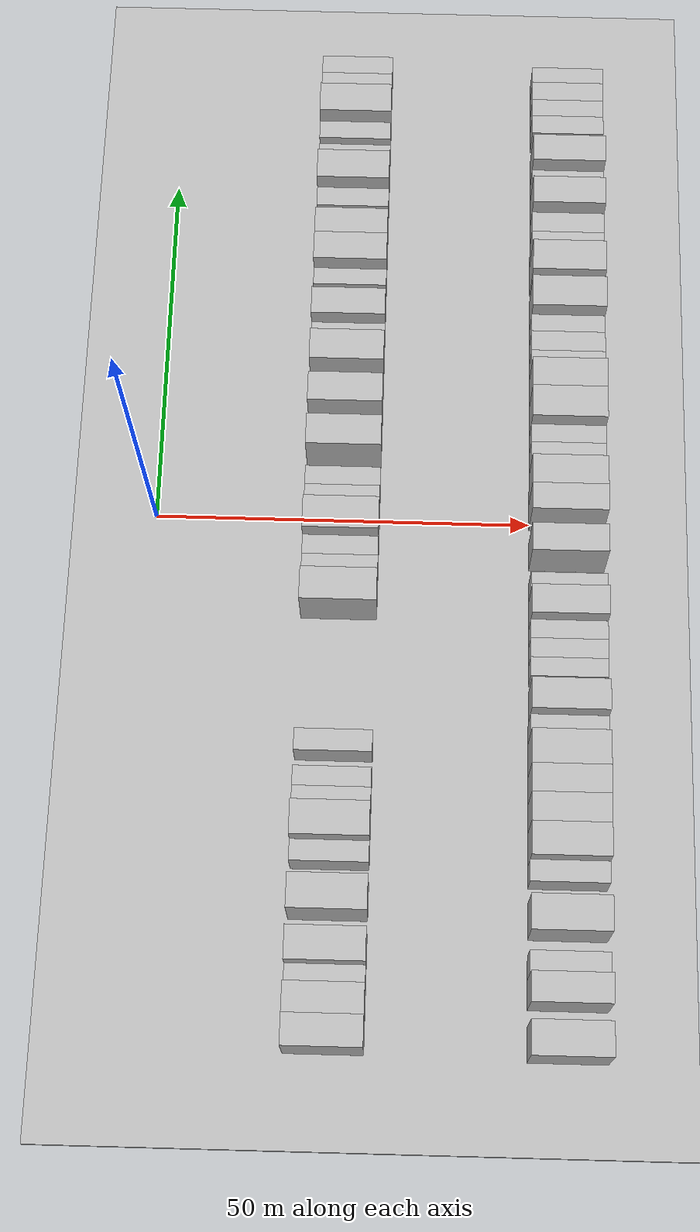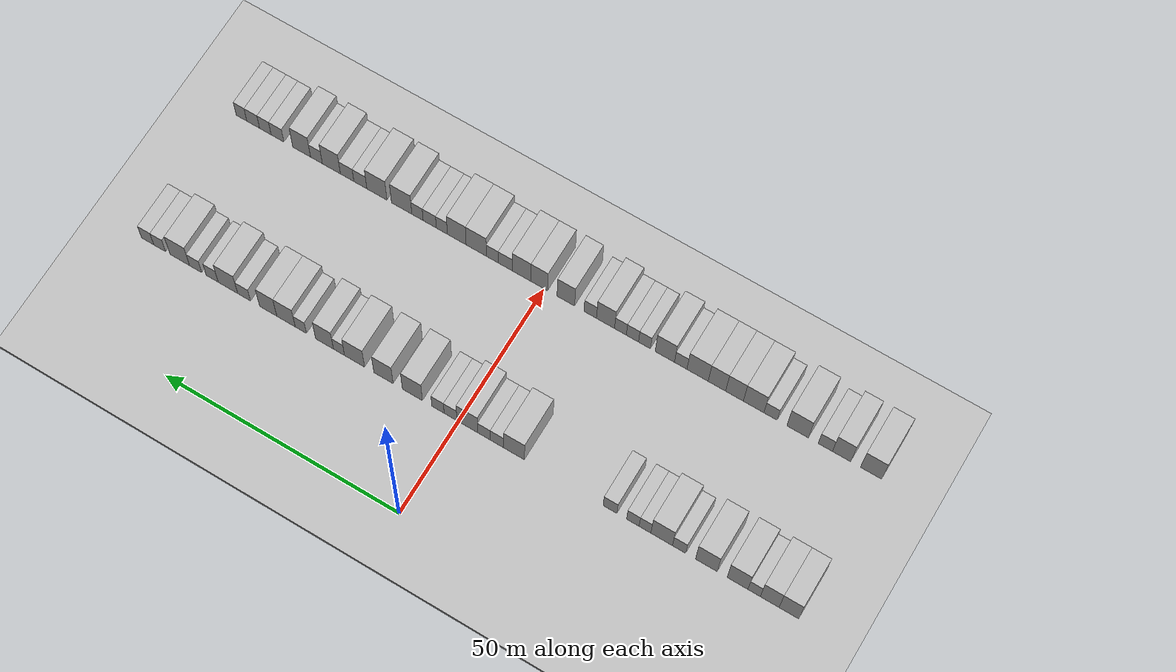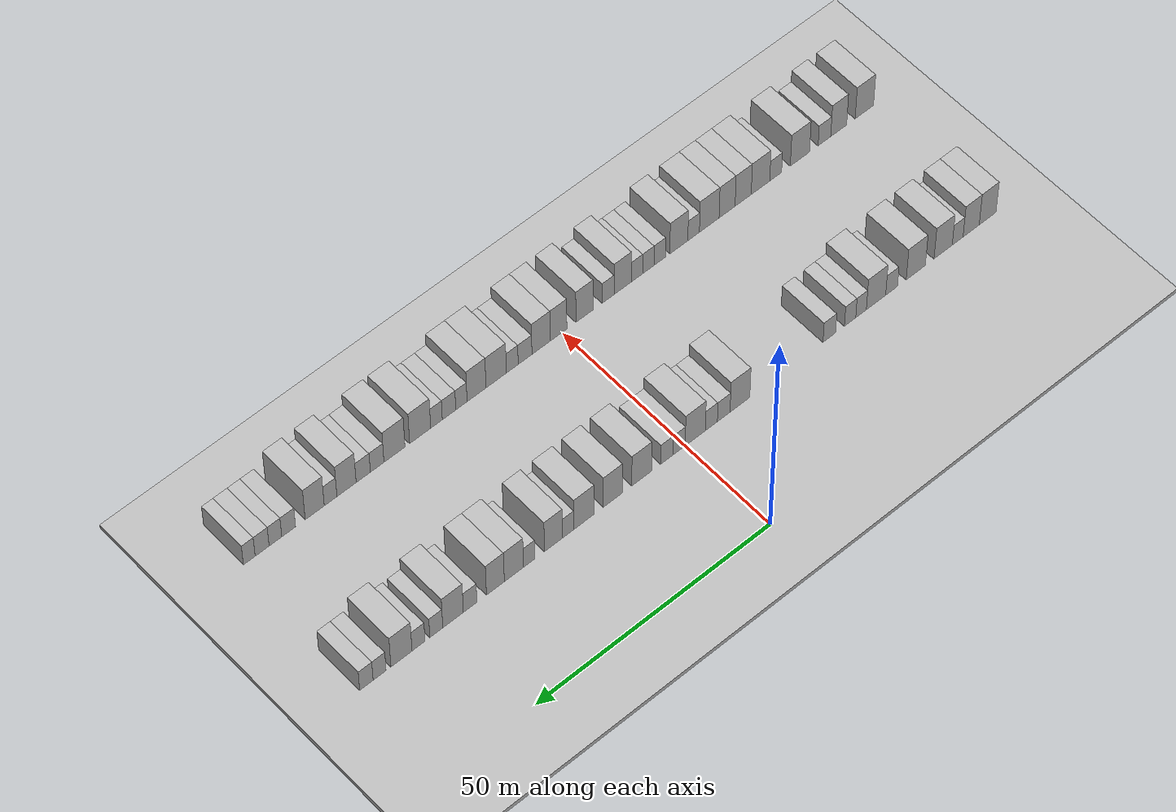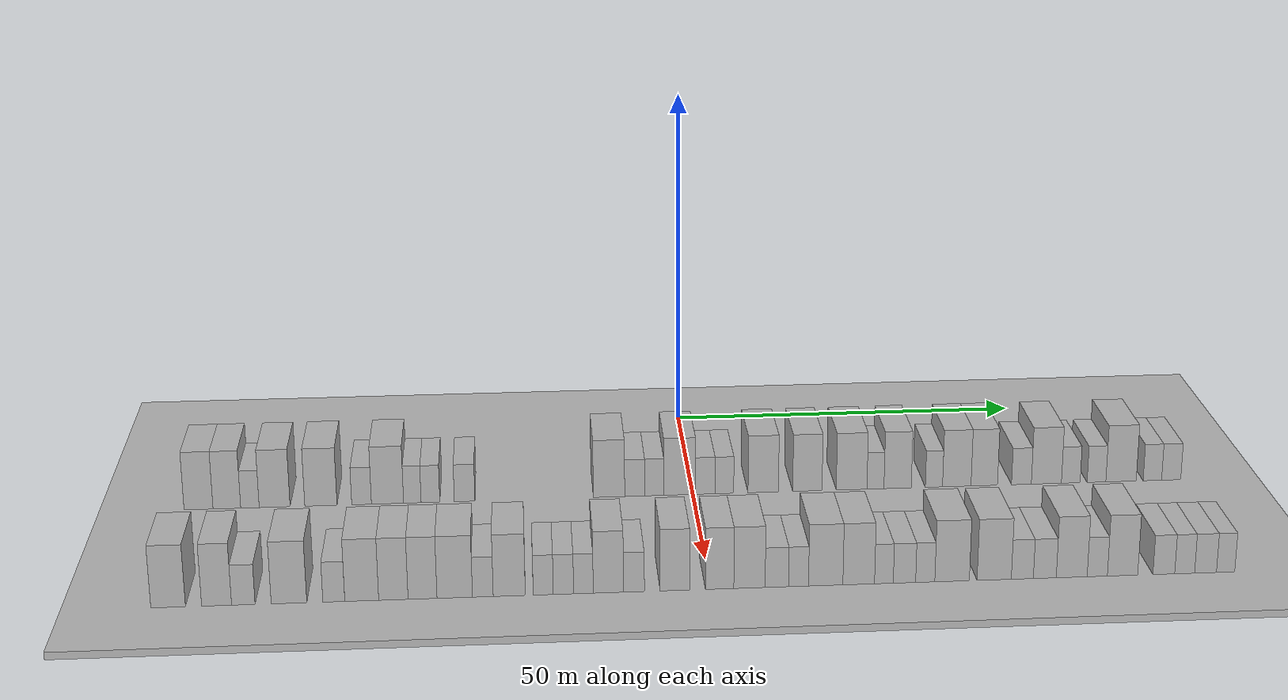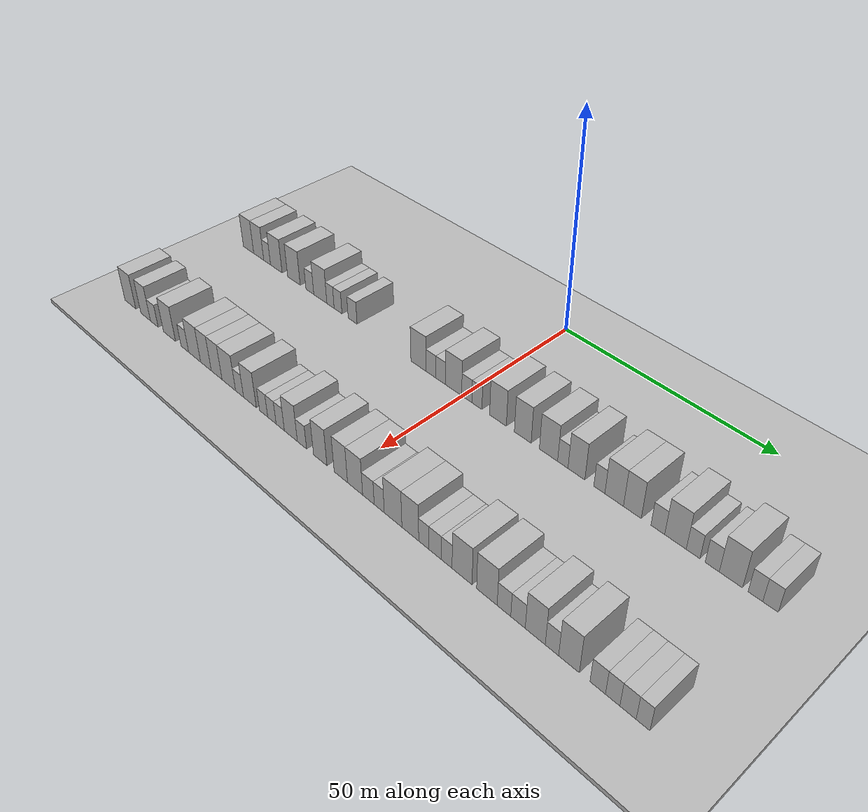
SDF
<sdf version="1.6">
 <world name="default">
  <include><name>ground_plane_1</name><uri>model://HANNAS_ground_plane</uri></include>
  <include>
   <name>ground_plane_2</name>
   <uri>model://HANNAS_ground_plane</uri>
   <pose>100 0 0  0 0 0</pose>
  </include>
  <model name="building_38">
   <static>1</static>
   <pose>25.0000 -68.0670 0 0.000000 0.000000 0.000000</pose>
   <link name="link">
    <pose>0 0 4.50 0 0 0</pose>
    <collision name="collision"><geometry><box><size>10.0000 3.9202 9.0000</size></box></geometry></collision>
    <visual name="visual">
     <cast_shadows>0</cast_shadows>
     <geometry><box><size>10.0000 3.9202 9.0000</size></box></geometry>
     <material>
      <script>
       <uri>model://HANNAS_wall/materials/scripts</uri>
       <uri>model://HANNAS_wall/materials/textures</uri>
       <name>vrc/HANNAS_wall</name>
      </script>
     </material>
    </visual>
   </link>
  </model>
  <model name="building_39">
   <static>1</static>
   <pose>25.0000 -64.2276 0 0.000000 0.000000 0.000000</pose>
   <link name="link">
    <pose>0 0 4.50 0 0 0</pose>
    <collision name="collision"><geometry><box><size>10.0000 3.7588 9.0000</size></box></geometry></collision>
    <visual name="visual">
     <cast_shadows>0</cast_shadows>
     <geometry><box><size>10.0000 3.7588 9.0000</size></box></geometry>
     <material>
      <script>
       <uri>model://HANNAS_wall/materials/scripts</uri>
       <uri>model://HANNAS_wall/materials/textures</uri>
       <name>vrc/HANNAS_wall</name>
      </script>
     </material>
    </visual>
   </link>
  </model>
  <model name="building_40">
   <static>1</static>
   <pose>25.0000 -61.0948 0 0.000000 0.000000 0.000000</pose>
   <link name="link">
    <pose>0 0 3.00 0 0 0</pose>
    <collision name="collision"><geometry><box><size>10.0000 2.5068 6.0000</size></box></geometry></collision>
    <visual name="visual">
     <cast_shadows>0</cast_shadows>
     <geometry><box><size>10.0000 2.5068 6.0000</size></box></geometry>
     <material>
      <script>
       <uri>model://HANNAS_wall/materials/scripts</uri>
       <uri>model://HANNAS_wall/materials/textures</uri>
       <name>vrc/HANNAS_wall</name>
      </script>
     </material>
    </visual>
   </link>
  </model>
  <model name="building_41">
   <static>1</static>
   <pose>25.0000 -57.7386 0 0.000000 0.000000 0.000000</pose>
   <link name="link">
    <pose>0 0 4.50 0 0 0</pose>
    <collision name="collision"><geometry><box><size>10.0000 4.2054 9.0000</size></box></geometry></collision>
    <visual name="visual">
     <cast_shadows>0</cast_shadows>
     <geometry><box><size>10.0000 4.2054 9.0000</size></box></geometry>
     <material>
      <script>
       <uri>model://HANNAS_wall/materials/scripts</uri>
       <uri>model://HANNAS_wall/materials/textures</uri>
       <name>vrc/HANNAS_wall</name>
      </script>
     </material>
    </visual>
   </link>
  </model>
  <model name="building_42">
   <static>1</static>
   <pose>25.0000 -51.4354 0 0.000000 0.000000 0.000000</pose>
   <link name="link">
    <pose>0 0 4.50 0 0 0</pose>
    <collision name="collision"><geometry><box><size>10.0000 4.4011 9.0000</size></box></geometry></collision>
    <visual name="visual">
     <cast_shadows>0</cast_shadows>
     <geometry><box><size>10.0000 4.4011 9.0000</size></box></geometry>
     <material>
      <script>
       <uri>model://HANNAS_wall/materials/scripts</uri>
       <uri>model://HANNAS_wall/materials/textures</uri>
       <name>vrc/HANNAS_wall</name>
      </script>
     </material>
    </visual>
   </link>
  </model>
  <model name="building_43">
   <static>1</static>
   <pose>25.0000 -45.8869 0 0.000000 0.000000 0.000000</pose>
   <link name="link">
    <pose>0 0 3.00 0 0 0</pose>
    <collision name="collision"><geometry><box><size>10.0000 2.6959 6.0000</size></box></geometry></collision>
    <visual name="visual">
     <cast_shadows>0</cast_shadows>
     <geometry><box><size>10.0000 2.6959 6.0000</size></box></geometry>
     <material>
      <script>
       <uri>model://HANNAS_wall/materials/scripts</uri>
       <uri>model://HANNAS_wall/materials/textures</uri>
       <name>vrc/HANNAS_wall</name>
      </script>
     </material>
    </visual>
   </link>
  </model>
  <model name="building_44">
   <static>1</static>
   <pose>25.0000 -42.3355 0 0.000000 0.000000 0.000000</pose>
   <link name="link">
    <pose>0 0 4.50 0 0 0</pose>
    <collision name="collision"><geometry><box><size>10.0000 4.4068 9.0000</size></box></geometry></collision>
    <visual name="visual">
     <cast_shadows>0</cast_shadows>
     <geometry><box><size>10.0000 4.4068 9.0000</size></box></geometry>
     <material>
      <script>
       <uri>model://HANNAS_wall/materials/scripts</uri>
       <uri>model://HANNAS_wall/materials/textures</uri>
       <name>vrc/HANNAS_wall</name>
      </script>
     </material>
    </visual>
   </link>
  </model>
  <model name="building_45">
   <static>1</static>
   <pose>25.0000 -38.9299 0 0.000000 0.000000 0.000000</pose>
   <link name="link">
    <pose>0 0 3.00 0 0 0</pose>
    <collision name="collision"><geometry><box><size>10.0000 2.4043 6.0000</size></box></geometry></collision>
    <visual name="visual">
     <cast_shadows>0</cast_shadows>
     <geometry><box><size>10.0000 2.4043 6.0000</size></box></geometry>
     <material>
      <script>
       <uri>model://HANNAS_wall/materials/scripts</uri>
       <uri>model://HANNAS_wall/materials/textures</uri>
       <name>vrc/HANNAS_wall</name>
      </script>
     </material>
    </visual>
   </link>
  </model>
  <model name="building_46">
   <static>1</static>
   <pose>25.0000 -36.4468 0 0.000000 0.000000 0.000000</pose>
   <link name="link">
    <pose>0 0 3.00 0 0 0</pose>
    <collision name="collision"><geometry><box><size>10.0000 2.5620 6.0000</size></box></geometry></collision>
    <visual name="visual">
     <cast_shadows>0</cast_shadows>
     <geometry><box><size>10.0000 2.5620 6.0000</size></box></geometry>
     <material>
      <script>
       <uri>model://HANNAS_wall/materials/scripts</uri>
       <uri>model://HANNAS_wall/materials/textures</uri>
       <name>vrc/HANNAS_wall</name>
      </script>
     </material>
    </visual>
   </link>
  </model>
  <model name="building_47">
   <static>1</static>
   <pose>25.0000 -31.7470 0 0.000000 0.000000 0.000000</pose>
   <link name="link">
    <pose>0 0 3.00 0 0 0</pose>
    <collision name="collision"><geometry><box><size>10.0000 2.8375 6.0000</size></box></geometry></collision>
    <visual name="visual">
     <cast_shadows>0</cast_shadows>
     <geometry><box><size>10.0000 2.8375 6.0000</size></box></geometry>
     <material>
      <script>
       <uri>model://HANNAS_wall/materials/scripts</uri>
       <uri>model://HANNAS_wall/materials/textures</uri>
       <name>vrc/HANNAS_wall</name>
      </script>
     </material>
    </visual>
   </link>
  </model>
  <model name="building_48">
   <static>1</static>
   <pose>25.0000 -11.7976 0 0.000000 0.000000 0.000000</pose>
   <link name="link">
    <pose>0 0 4.50 0 0 0</pose>
    <collision name="collision"><geometry><box><size>10.0000 4.3538 9.0000</size></box></geometry></collision>
    <visual name="visual">
     <cast_shadows>0</cast_shadows>
     <geometry><box><size>10.0000 4.3538 9.0000</size></box></geometry>
     <material>
      <script>
       <uri>model://HANNAS_wall/materials/scripts</uri>
       <uri>model://HANNAS_wall/materials/textures</uri>
       <name>vrc/HANNAS_wall</name>
      </script>
     </material>
    </visual>
   </link>
  </model>
  <model name="building_49">
   <static>1</static>
   <pose>25.0000 -8.2240 0 0.000000 0.000000 0.000000</pose>
   <link name="link">
    <pose>0 0 3.00 0 0 0</pose>
    <collision name="collision"><geometry><box><size>10.0000 2.7933 6.0000</size></box></geometry></collision>
    <visual name="visual">
     <cast_shadows>0</cast_shadows>
     <geometry><box><size>10.0000 2.7933 6.0000</size></box></geometry>
     <material>
      <script>
       <uri>model://HANNAS_wall/materials/scripts</uri>
       <uri>model://HANNAS_wall/materials/textures</uri>
       <name>vrc/HANNAS_wall</name>
      </script>
     </material>
    </visual>
   </link>
  </model>
  <model name="building_50">
   <static>1</static>
   <pose>25.0000 -5.5053 0 0.000000 0.000000 0.000000</pose>
   <link name="link">
    <pose>0 0 3.00 0 0 0</pose>
    <collision name="collision"><geometry><box><size>10.0000 2.6441 6.0000</size></box></geometry></collision>
    <visual name="visual">
     <cast_shadows>0</cast_shadows>
     <geometry><box><size>10.0000 2.6441 6.0000</size></box></geometry>
     <material>
      <script>
       <uri>model://HANNAS_wall/materials/scripts</uri>
       <uri>model://HANNAS_wall/materials/textures</uri>
       <name>vrc/HANNAS_wall</name>
      </script>
     </material>
    </visual>
   </link>
  </model>
  <model name="building_51">
   <static>1</static>
   <pose>25.0000 -1.9805 0 0.000000 0.000000 0.000000</pose>
   <link name="link">
    <pose>0 0 4.50 0 0 0</pose>
    <collision name="collision"><geometry><box><size>10.0000 4.4055 9.0000</size></box></geometry></collision>
    <visual name="visual">
     <cast_shadows>0</cast_shadows>
     <geometry><box><size>10.0000 4.4055 9.0000</size></box></geometry>
     <material>
      <script>
       <uri>model://HANNAS_wall/materials/scripts</uri>
       <uri>model://HANNAS_wall/materials/textures</uri>
       <name>vrc/HANNAS_wall</name>
      </script>
     </material>
    </visual>
   </link>
  </model>
  <model name="building_52">
   <static>1</static>
   <pose>25.0000 1.5876 0 0.000000 0.000000 0.000000</pose>
   <link name="link">
    <pose>0 0 3.00 0 0 0</pose>
    <collision name="collision"><geometry><box><size>10.0000 2.7308 6.0000</size></box></geometry></collision>
    <visual name="visual">
     <cast_shadows>0</cast_shadows>
     <geometry><box><size>10.0000 2.7308 6.0000</size></box></geometry>
     <material>
      <script>
       <uri>model://HANNAS_wall/materials/scripts</uri>
       <uri>model://HANNAS_wall/materials/textures</uri>
       <name>vrc/HANNAS_wall</name>
      </script>
     </material>
    </visual>
   </link>
  </model>
  <model name="building_53">
   <static>1</static>
   <pose>25.0000 4.2587 0 0.000000 0.000000 0.000000</pose>
   <link name="link">
    <pose>0 0 3.00 0 0 0</pose>
    <collision name="collision"><geometry><box><size>10.0000 2.6114 6.0000</size></box></geometry></collision>
    <visual name="visual">
     <cast_shadows>0</cast_shadows>
     <geometry><box><size>10.0000 2.6114 6.0000</size></box></geometry>
     <material>
      <script>
       <uri>model://HANNAS_wall/materials/scripts</uri>
       <uri>model://HANNAS_wall/materials/textures</uri>
       <name>vrc/HANNAS_wall</name>
      </script>
     </material>
    </visual>
   </link>
  </model>
  <model name="building_54">
   <static>1</static>
   <pose>25.0000 9.6952 0 0.000000 0.000000 0.000000</pose>
   <link name="link">
    <pose>0 0 4.50 0 0 0</pose>
    <collision name="collision"><geometry><box><size>10.0000 4.2614 9.0000</size></box></geometry></collision>
    <visual name="visual">
     <cast_shadows>0</cast_shadows>
     <geometry><box><size>10.0000 4.2614 9.0000</size></box></geometry>
     <material>
      <script>
       <uri>model://HANNAS_wall/materials/scripts</uri>
       <uri>model://HANNAS_wall/materials/textures</uri>
       <name>vrc/HANNAS_wall</name>
      </script>
     </material>
    </visual>
   </link>
  </model>
  <model name="building_55">
   <static>1</static>
   <pose>25.0000 15.8820 0 0.000000 0.000000 0.000000</pose>
   <link name="link">
    <pose>0 0 4.50 0 0 0</pose>
    <collision name="collision"><geometry><box><size>10.0000 4.1123 9.0000</size></box></geometry></collision>
    <visual name="visual">
     <cast_shadows>0</cast_shadows>
     <geometry><box><size>10.0000 4.1123 9.0000</size></box></geometry>
     <material>
      <script>
       <uri>model://HANNAS_wall/materials/scripts</uri>
       <uri>model://HANNAS_wall/materials/textures</uri>
       <name>vrc/HANNAS_wall</name>
      </script>
     </material>
    </visual>
   </link>
  </model>
  <model name="building_56">
   <static>1</static>
   <pose>25.0000 22.0981 0 0.000000 0.000000 0.000000</pose>
   <link name="link">
    <pose>0 0 4.50 0 0 0</pose>
    <collision name="collision"><geometry><box><size>10.0000 4.3200 9.0000</size></box></geometry></collision>
    <visual name="visual">
     <cast_shadows>0</cast_shadows>
     <geometry><box><size>10.0000 4.3200 9.0000</size></box></geometry>
     <material>
      <script>
       <uri>model://HANNAS_wall/materials/scripts</uri>
       <uri>model://HANNAS_wall/materials/textures</uri>
       <name>vrc/HANNAS_wall</name>
      </script>
     </material>
    </visual>
   </link>
  </model>
  <model name="building_57">
   <static>1</static>
   <pose>25.0000 25.4581 0 0.000000 0.000000 0.000000</pose>
   <link name="link">
    <pose>0 0 3.00 0 0 0</pose>
    <collision name="collision"><geometry><box><size>10.0000 2.4001 6.0000</size></box></geometry></collision>
    <visual name="visual">
     <cast_shadows>0</cast_shadows>
     <geometry><box><size>10.0000 2.4001 6.0000</size></box></geometry>
     <material>
      <script>
       <uri>model://HANNAS_wall/materials/scripts</uri>
       <uri>model://HANNAS_wall/materials/textures</uri>
       <name>vrc/HANNAS_wall</name>
      </script>
     </material>
    </visual>
   </link>
  </model>
  <model name="building_58">
   <static>1</static>
   <pose>25.0000 28.5833 0 0.000000 0.000000 0.000000</pose>
   <link name="link">
    <pose>0 0 4.50 0 0 0</pose>
    <collision name="collision"><geometry><box><size>10.0000 3.8502 9.0000</size></box></geometry></collision>
    <visual name="visual">
     <cast_shadows>0</cast_shadows>
     <geometry><box><size>10.0000 3.8502 9.0000</size></box></geometry>
     <material>
      <script>
       <uri>model://HANNAS_wall/materials/scripts</uri>
       <uri>model://HANNAS_wall/materials/textures</uri>
       <name>vrc/HANNAS_wall</name>
      </script>
     </material>
    </visual>
   </link>
  </model>
  <model name="building_59">
   <static>1</static>
   <pose>25.0000 33.7234 0 0.000000 0.000000 0.000000</pose>
   <link name="link">
    <pose>0 0 3.00 0 0 0</pose>
    <collision name="collision"><geometry><box><size>10.0000 2.4300 6.0000</size></box></geometry></collision>
    <visual name="visual">
     <cast_shadows>0</cast_shadows>
     <geometry><box><size>10.0000 2.4300 6.0000</size></box></geometry>
     <material>
      <script>
       <uri>model://HANNAS_wall/materials/scripts</uri>
       <uri>model://HANNAS_wall/materials/textures</uri>
       <name>vrc/HANNAS_wall</name>
      </script>
     </material>
    </visual>
   </link>
  </model>
  <model name="building_60">
   <static>1</static>
   <pose>25.0000 36.9550 0 0.000000 0.000000 0.000000</pose>
   <link name="link">
    <pose>0 0 4.50 0 0 0</pose>
    <collision name="collision"><geometry><box><size>10.0000 4.0330 9.0000</size></box></geometry></collision>
    <visual name="visual">
     <cast_shadows>0</cast_shadows>
     <geometry><box><size>10.0000 4.0330 9.0000</size></box></geometry>
     <material>
      <script>
       <uri>model://HANNAS_wall/materials/scripts</uri>
       <uri>model://HANNAS_wall/materials/textures</uri>
       <name>vrc/HANNAS_wall</name>
      </script>
     </material>
    </visual>
   </link>
  </model>
  <model name="building_61">
   <static>1</static>
   <pose>25.0000 40.8495 0 0.000000 0.000000 0.000000</pose>
   <link name="link">
    <pose>0 0 4.50 0 0 0</pose>
    <collision name="collision"><geometry><box><size>10.0000 3.7560 9.0000</size></box></geometry></collision>
    <visual name="visual">
     <cast_shadows>0</cast_shadows>
     <geometry><box><size>10.0000 3.7560 9.0000</size></box></geometry>
     <material>
      <script>
       <uri>model://HANNAS_wall/materials/scripts</uri>
       <uri>model://HANNAS_wall/materials/textures</uri>
       <name>vrc/HANNAS_wall</name>
      </script>
     </material>
    </visual>
   </link>
  </model>
  <model name="building_62">
   <static>1</static>
   <pose>25.0000 46.1353 0 0.000000 0.000000 0.000000</pose>
   <link name="link">
    <pose>0 0 3.00 0 0 0</pose>
    <collision name="collision"><geometry><box><size>10.0000 2.8158 6.0000</size></box></geometry></collision>
    <visual name="visual">
     <cast_shadows>0</cast_shadows>
     <geometry><box><size>10.0000 2.8158 6.0000</size></box></geometry>
     <material>
      <script>
       <uri>model://HANNAS_wall/materials/scripts</uri>
       <uri>model://HANNAS_wall/materials/textures</uri>
       <name>vrc/HANNAS_wall</name>
      </script>
     </material>
    </visual>
   </link>
  </model>
  <model name="building_63">
   <static>1</static>
   <pose>25.0000 49.6859 0 0.000000 0.000000 0.000000</pose>
   <link name="link">
    <pose>0 0 4.50 0 0 0</pose>
    <collision name="collision"><geometry><box><size>10.0000 4.2855 9.0000</size></box></geometry></collision>
    <visual name="visual">
     <cast_shadows>0</cast_shadows>
     <geometry><box><size>10.0000 4.2855 9.0000</size></box></geometry>
     <material>
      <script>
       <uri>model://HANNAS_wall/materials/scripts</uri>
       <uri>model://HANNAS_wall/materials/textures</uri>
       <name>vrc/HANNAS_wall</name>
      </script>
     </material>
    </visual>
   </link>
  </model>
  <model name="building_64">
   <static>1</static>
   <pose>25.0000 53.1660 0 0.000000 0.000000 0.000000</pose>
   <link name="link">
    <pose>0 0 3.00 0 0 0</pose>
    <collision name="collision"><geometry><box><size>10.0000 2.6747 6.0000</size></box></geometry></collision>
    <visual name="visual">
     <cast_shadows>0</cast_shadows>
     <geometry><box><size>10.0000 2.6747 6.0000</size></box></geometry>
     <material>
      <script>
       <uri>model://HANNAS_wall/materials/scripts</uri>
       <uri>model://HANNAS_wall/materials/textures</uri>
       <name>vrc/HANNAS_wall</name>
      </script>
     </material>
    </visual>
   </link>
  </model>
  <model name="building_65">
   <static>1</static>
   <pose>25.0000 56.8422 0 0.000000 0.000000 0.000000</pose>
   <link name="link">
    <pose>0 0 3.00 0 0 0</pose>
    <collision name="collision"><geometry><box><size>10.0000 2.6775 6.0000</size></box></geometry></collision>
    <visual name="visual">
     <cast_shadows>0</cast_shadows>
     <geometry><box><size>10.0000 2.6775 6.0000</size></box></geometry>
     <material>
      <script>
       <uri>model://HANNAS_wall/materials/scripts</uri>
       <uri>model://HANNAS_wall/materials/textures</uri>
       <name>vrc/HANNAS_wall</name>
      </script>
     </material>
    </visual>
   </link>
  </model>
  <model name="building_66">
   <static>1</static>
   <pose>25.0000 60.3507 0 0.000000 0.000000 0.000000</pose>
   <link name="link">
    <pose>0 0 4.50 0 0 0</pose>
    <collision name="collision"><geometry><box><size>10.0000 4.3394 9.0000</size></box></geometry></collision>
    <visual name="visual">
     <cast_shadows>0</cast_shadows>
     <geometry><box><size>10.0000 4.3394 9.0000</size></box></geometry>
     <material>
      <script>
       <uri>model://HANNAS_wall/materials/scripts</uri>
       <uri>model://HANNAS_wall/materials/textures</uri>
       <name>vrc/HANNAS_wall</name>
      </script>
     </material>
    </visual>
   </link>
  </model>
  <model name="building_67">
   <static>1</static>
   <pose>25.0000 64.8433 0 0.000000 0.000000 0.000000</pose>
   <link name="link">
    <pose>0 0 3.00 0 0 0</pose>
    <collision name="collision"><geometry><box><size>10.0000 2.6458 6.0000</size></box></geometry></collision>
    <visual name="visual">
     <cast_shadows>0</cast_shadows>
     <geometry><box><size>10.0000 2.6458 6.0000</size></box></geometry>
     <material>
      <script>
       <uri>model://HANNAS_wall/materials/scripts</uri>
       <uri>model://HANNAS_wall/materials/textures</uri>
       <name>vrc/HANNAS_wall</name>
      </script>
     </material>
    </visual>
   </link>
  </model>
  <model name="building_68">
   <static>1</static>
   <pose>25.0000 67.5392 0 0.000000 0.000000 0.000000</pose>
   <link name="link">
    <pose>0 0 3.00 0 0 0</pose>
    <collision name="collision"><geometry><box><size>10.0000 2.7460 6.0000</size></box></geometry></collision>
    <visual name="visual">
     <cast_shadows>0</cast_shadows>
     <geometry><box><size>10.0000 2.7460 6.0000</size></box></geometry>
     <material>
      <script>
       <uri>model://HANNAS_wall/materials/scripts</uri>
       <uri>model://HANNAS_wall/materials/textures</uri>
       <name>vrc/HANNAS_wall</name>
      </script>
     </material>
    </visual>
   </link>
  </model>
  <model name="building_134">
   <static>1</static>
   <pose>55.0000 -68.2316 0 0.000000 0.000000 0.000000</pose>
   <link name="link">
    <pose>0 0 4.50 0 0 0</pose>
    <collision name="collision"><geometry><box><size>10.0000 4.2879 9.0000</size></box></geometry></collision>
    <visual name="visual">
     <cast_shadows>0</cast_shadows>
     <geometry><box><size>10.0000 4.2879 9.0000</size></box></geometry>
     <material>
      <script>
       <uri>model://HANNAS_wall/materials/scripts</uri>
       <uri>model://HANNAS_wall/materials/textures</uri>
       <name>vrc/HANNAS_wall</name>
      </script>
     </material>
    </visual>
   </link>
  </model>
  <model name="building_135">
   <static>1</static>
   <pose>55.0000 -62.2344 0 0.000000 0.000000 0.000000</pose>
   <link name="link">
    <pose>0 0 4.50 0 0 0</pose>
    <collision name="collision"><geometry><box><size>10.0000 3.7065 9.0000</size></box></geometry></collision>
    <visual name="visual">
     <cast_shadows>0</cast_shadows>
     <geometry><box><size>10.0000 3.7065 9.0000</size></box></geometry>
     <material>
      <script>
       <uri>model://HANNAS_wall/materials/scripts</uri>
       <uri>model://HANNAS_wall/materials/textures</uri>
       <name>vrc/HANNAS_wall</name>
      </script>
     </material>
    </visual>
   </link>
  </model>
  <model name="building_136">
   <static>1</static>
   <pose>55.0000 -58.9238 0 0.000000 0.000000 0.000000</pose>
   <link name="link">
    <pose>0 0 3.00 0 0 0</pose>
    <collision name="collision"><geometry><box><size>10.0000 2.9149 6.0000</size></box></geometry></collision>
    <visual name="visual">
     <cast_shadows>0</cast_shadows>
     <geometry><box><size>10.0000 2.9149 6.0000</size></box></geometry>
     <material>
      <script>
       <uri>model://HANNAS_wall/materials/scripts</uri>
       <uri>model://HANNAS_wall/materials/textures</uri>
       <name>vrc/HANNAS_wall</name>
      </script>
     </material>
    </visual>
   </link>
  </model>
  <model name="building_137">
   <static>1</static>
   <pose>55.0000 -53.2517 0 0.000000 0.000000 0.000000</pose>
   <link name="link">
    <pose>0 0 4.50 0 0 0</pose>
    <collision name="collision"><geometry><box><size>10.0000 4.4294 9.0000</size></box></geometry></collision>
    <visual name="visual">
     <cast_shadows>0</cast_shadows>
     <geometry><box><size>10.0000 4.4294 9.0000</size></box></geometry>
     <material>
      <script>
       <uri>model://HANNAS_wall/materials/scripts</uri>
       <uri>model://HANNAS_wall/materials/textures</uri>
       <name>vrc/HANNAS_wall</name>
      </script>
     </material>
    </visual>
   </link>
  </model>
  <model name="building_138">
   <static>1</static>
   <pose>55.0000 -47.6701 0 0.000000 0.000000 0.000000</pose>
   <link name="link">
    <pose>0 0 3.00 0 0 0</pose>
    <collision name="collision"><geometry><box><size>10.0000 2.7338 6.0000</size></box></geometry></collision>
    <visual name="visual">
     <cast_shadows>0</cast_shadows>
     <geometry><box><size>10.0000 2.7338 6.0000</size></box></geometry>
     <material>
      <script>
       <uri>model://HANNAS_wall/materials/scripts</uri>
       <uri>model://HANNAS_wall/materials/textures</uri>
       <name>vrc/HANNAS_wall</name>
      </script>
     </material>
    </visual>
   </link>
  </model>
  <model name="building_139">
   <static>1</static>
   <pose>55.0000 -44.1873 0 0.000000 0.000000 0.000000</pose>
   <link name="link">
    <pose>0 0 4.50 0 0 0</pose>
    <collision name="collision"><geometry><box><size>10.0000 4.2316 9.0000</size></box></geometry></collision>
    <visual name="visual">
     <cast_shadows>0</cast_shadows>
     <geometry><box><size>10.0000 4.2316 9.0000</size></box></geometry>
     <material>
      <script>
       <uri>model://HANNAS_wall/materials/scripts</uri>
       <uri>model://HANNAS_wall/materials/textures</uri>
       <name>vrc/HANNAS_wall</name>
      </script>
     </material>
    </visual>
   </link>
  </model>
  <model name="building_140">
   <static>1</static>
   <pose>55.0000 -40.2334 0 0.000000 0.000000 0.000000</pose>
   <link name="link">
    <pose>0 0 4.50 0 0 0</pose>
    <collision name="collision"><geometry><box><size>10.0000 3.6763 9.0000</size></box></geometry></collision>
    <visual name="visual">
     <cast_shadows>0</cast_shadows>
     <geometry><box><size>10.0000 3.6763 9.0000</size></box></geometry>
     <material>
      <script>
       <uri>model://HANNAS_wall/materials/scripts</uri>
       <uri>model://HANNAS_wall/materials/textures</uri>
       <name>vrc/HANNAS_wall</name>
      </script>
     </material>
    </visual>
   </link>
  </model>
  <model name="building_141">
   <static>1</static>
   <pose>55.0000 -36.5804 0 0.000000 0.000000 0.000000</pose>
   <link name="link">
    <pose>0 0 4.50 0 0 0</pose>
    <collision name="collision"><geometry><box><size>10.0000 3.6298 9.0000</size></box></geometry></collision>
    <visual name="visual">
     <cast_shadows>0</cast_shadows>
     <geometry><box><size>10.0000 3.6298 9.0000</size></box></geometry>
     <material>
      <script>
       <uri>model://HANNAS_wall/materials/scripts</uri>
       <uri>model://HANNAS_wall/materials/textures</uri>
       <name>vrc/HANNAS_wall</name>
      </script>
     </material>
    </visual>
   </link>
  </model>
  <model name="building_142">
   <static>1</static>
   <pose>55.0000 -32.5394 0 0.000000 0.000000 0.000000</pose>
   <link name="link">
    <pose>0 0 4.50 0 0 0</pose>
    <collision name="collision"><geometry><box><size>10.0000 4.4522 9.0000</size></box></geometry></collision>
    <visual name="visual">
     <cast_shadows>0</cast_shadows>
     <geometry><box><size>10.0000 4.4522 9.0000</size></box></geometry>
     <material>
      <script>
       <uri>model://HANNAS_wall/materials/scripts</uri>
       <uri>model://HANNAS_wall/materials/textures</uri>
       <name>vrc/HANNAS_wall</name>
      </script>
     </material>
    </visual>
   </link>
  </model>
  <model name="building_143">
   <static>1</static>
   <pose>55.0000 -29.0091 0 0.000000 0.000000 0.000000</pose>
   <link name="link">
    <pose>0 0 3.00 0 0 0</pose>
    <collision name="collision"><geometry><box><size>10.0000 2.6084 6.0000</size></box></geometry></collision>
    <visual name="visual">
     <cast_shadows>0</cast_shadows>
     <geometry><box><size>10.0000 2.6084 6.0000</size></box></geometry>
     <material>
      <script>
       <uri>model://HANNAS_wall/materials/scripts</uri>
       <uri>model://HANNAS_wall/materials/textures</uri>
       <name>vrc/HANNAS_wall</name>
      </script>
     </material>
    </visual>
   </link>
  </model>
  <model name="building_144">
   <static>1</static>
   <pose>55.0000 -25.6829 0 0.000000 0.000000 0.000000</pose>
   <link name="link">
    <pose>0 0 4.50 0 0 0</pose>
    <collision name="collision"><geometry><box><size>10.0000 4.0441 9.0000</size></box></geometry></collision>
    <visual name="visual">
     <cast_shadows>0</cast_shadows>
     <geometry><box><size>10.0000 4.0441 9.0000</size></box></geometry>
     <material>
      <script>
       <uri>model://HANNAS_wall/materials/scripts</uri>
       <uri>model://HANNAS_wall/materials/textures</uri>
       <name>vrc/HANNAS_wall</name>
      </script>
     </material>
    </visual>
   </link>
  </model>
  <model name="building_145">
   <static>1</static>
   <pose>55.0000 -21.3952 0 0.000000 0.000000 0.000000</pose>
   <link name="link">
    <pose>0 0 3.00 0 0 0</pose>
    <collision name="collision"><geometry><box><size>10.0000 2.5312 6.0000</size></box></geometry></collision>
    <visual name="visual">
     <cast_shadows>0</cast_shadows>
     <geometry><box><size>10.0000 2.5312 6.0000</size></box></geometry>
     <material>
      <script>
       <uri>model://HANNAS_wall/materials/scripts</uri>
       <uri>model://HANNAS_wall/materials/textures</uri>
       <name>vrc/HANNAS_wall</name>
      </script>
     </material>
    </visual>
   </link>
  </model>
  <model name="building_146">
   <static>1</static>
   <pose>55.0000 -18.8463 0 0.000000 0.000000 0.000000</pose>
   <link name="link">
    <pose>0 0 3.00 0 0 0</pose>
    <collision name="collision"><geometry><box><size>10.0000 2.5668 6.0000</size></box></geometry></collision>
    <visual name="visual">
     <cast_shadows>0</cast_shadows>
     <geometry><box><size>10.0000 2.5668 6.0000</size></box></geometry>
     <material>
      <script>
       <uri>model://HANNAS_wall/materials/scripts</uri>
       <uri>model://HANNAS_wall/materials/textures</uri>
       <name>vrc/HANNAS_wall</name>
      </script>
     </material>
    </visual>
   </link>
  </model>
  <model name="building_147">
   <static>1</static>
   <pose>55.0000 -16.3187 0 0.000000 0.000000 0.000000</pose>
   <link name="link">
    <pose>0 0 3.00 0 0 0</pose>
    <collision name="collision"><geometry><box><size>10.0000 2.4884 6.0000</size></box></geometry></collision>
    <visual name="visual">
     <cast_shadows>0</cast_shadows>
     <geometry><box><size>10.0000 2.4884 6.0000</size></box></geometry>
     <material>
      <script>
       <uri>model://HANNAS_wall/materials/scripts</uri>
       <uri>model://HANNAS_wall/materials/textures</uri>
       <name>vrc/HANNAS_wall</name>
      </script>
     </material>
    </visual>
   </link>
  </model>
  <model name="building_148">
   <static>1</static>
   <pose>55.0000 -13.1544 0 0.000000 0.000000 0.000000</pose>
   <link name="link">
    <pose>0 0 4.50 0 0 0</pose>
    <collision name="collision"><geometry><box><size>10.0000 3.8400 9.0000</size></box></geometry></collision>
    <visual name="visual">
     <cast_shadows>0</cast_shadows>
     <geometry><box><size>10.0000 3.8400 9.0000</size></box></geometry>
     <material>
      <script>
       <uri>model://HANNAS_wall/materials/scripts</uri>
       <uri>model://HANNAS_wall/materials/textures</uri>
       <name>vrc/HANNAS_wall</name>
      </script>
     </material>
    </visual>
   </link>
  </model>
  <model name="building_149">
   <static>1</static>
   <pose>55.0000 -9.9075 0 0.000000 0.000000 0.000000</pose>
   <link name="link">
    <pose>0 0 3.00 0 0 0</pose>
    <collision name="collision"><geometry><box><size>10.0000 2.6537 6.0000</size></box></geometry></collision>
    <visual name="visual">
     <cast_shadows>0</cast_shadows>
     <geometry><box><size>10.0000 2.6537 6.0000</size></box></geometry>
     <material>
      <script>
       <uri>model://HANNAS_wall/materials/scripts</uri>
       <uri>model://HANNAS_wall/materials/textures</uri>
       <name>vrc/HANNAS_wall</name>
      </script>
     </material>
    </visual>
   </link>
  </model>
  <model name="building_150">
   <static>1</static>
   <pose>55.0000 -4.7013 0 0.000000 0.000000 0.000000</pose>
   <link name="link">
    <pose>0 0 4.50 0 0 0</pose>
    <collision name="collision"><geometry><box><size>10.0000 3.7588 9.0000</size></box></geometry></collision>
    <visual name="visual">
     <cast_shadows>0</cast_shadows>
     <geometry><box><size>10.0000 3.7588 9.0000</size></box></geometry>
     <material>
      <script>
       <uri>model://HANNAS_wall/materials/scripts</uri>
       <uri>model://HANNAS_wall/materials/textures</uri>
       <name>vrc/HANNAS_wall</name>
      </script>
     </material>
    </visual>
   </link>
  </model>
  <model name="building_151">
   <static>1</static>
   <pose>55.0000 0.9879 0 0.000000 0.000000 0.000000</pose>
   <link name="link">
    <pose>0 0 4.50 0 0 0</pose>
    <collision name="collision"><geometry><box><size>10.0000 3.6196 9.0000</size></box></geometry></collision>
    <visual name="visual">
     <cast_shadows>0</cast_shadows>
     <geometry><box><size>10.0000 3.6196 9.0000</size></box></geometry>
     <material>
      <script>
       <uri>model://HANNAS_wall/materials/scripts</uri>
       <uri>model://HANNAS_wall/materials/textures</uri>
       <name>vrc/HANNAS_wall</name>
      </script>
     </material>
    </visual>
   </link>
  </model>
  <model name="building_152">
   <static>1</static>
   <pose>55.0000 4.8040 0 0.000000 0.000000 0.000000</pose>
   <link name="link">
    <pose>0 0 4.50 0 0 0</pose>
    <collision name="collision"><geometry><box><size>10.0000 4.0126 9.0000</size></box></geometry></collision>
    <visual name="visual">
     <cast_shadows>0</cast_shadows>
     <geometry><box><size>10.0000 4.0126 9.0000</size></box></geometry>
     <material>
      <script>
       <uri>model://HANNAS_wall/materials/scripts</uri>
       <uri>model://HANNAS_wall/materials/textures</uri>
       <name>vrc/HANNAS_wall</name>
      </script>
     </material>
    </visual>
   </link>
  </model>
  <model name="building_153">
   <static>1</static>
   <pose>55.0000 8.3078 0 0.000000 0.000000 0.000000</pose>
   <link name="link">
    <pose>0 0 3.00 0 0 0</pose>
    <collision name="collision"><geometry><box><size>10.0000 2.9950 6.0000</size></box></geometry></collision>
    <visual name="visual">
     <cast_shadows>0</cast_shadows>
     <geometry><box><size>10.0000 2.9950 6.0000</size></box></geometry>
     <material>
      <script>
       <uri>model://HANNAS_wall/materials/scripts</uri>
       <uri>model://HANNAS_wall/materials/textures</uri>
       <name>vrc/HANNAS_wall</name>
      </script>
     </material>
    </visual>
   </link>
  </model>
  <model name="building_154">
   <static>1</static>
   <pose>55.0000 11.0833 0 0.000000 0.000000 0.000000</pose>
   <link name="link">
    <pose>0 0 3.00 0 0 0</pose>
    <collision name="collision"><geometry><box><size>10.0000 2.5560 6.0000</size></box></geometry></collision>
    <visual name="visual">
     <cast_shadows>0</cast_shadows>
     <geometry><box><size>10.0000 2.5560 6.0000</size></box></geometry>
     <material>
      <script>
       <uri>model://HANNAS_wall/materials/scripts</uri>
       <uri>model://HANNAS_wall/materials/textures</uri>
       <name>vrc/HANNAS_wall</name>
      </script>
     </material>
    </visual>
   </link>
  </model>
  <model name="building_155">
   <static>1</static>
   <pose>55.0000 14.5666 0 0.000000 0.000000 0.000000</pose>
   <link name="link">
    <pose>0 0 4.50 0 0 0</pose>
    <collision name="collision"><geometry><box><size>10.0000 4.4106 9.0000</size></box></geometry></collision>
    <visual name="visual">
     <cast_shadows>0</cast_shadows>
     <geometry><box><size>10.0000 4.4106 9.0000</size></box></geometry>
     <material>
      <script>
       <uri>model://HANNAS_wall/materials/scripts</uri>
       <uri>model://HANNAS_wall/materials/textures</uri>
       <name>vrc/HANNAS_wall</name>
      </script>
     </material>
    </visual>
   </link>
  </model>
  <model name="building_156">
   <static>1</static>
   <pose>55.0000 18.8086 0 0.000000 0.000000 0.000000</pose>
   <link name="link">
    <pose>0 0 4.50 0 0 0</pose>
    <collision name="collision"><geometry><box><size>10.0000 4.0734 9.0000</size></box></geometry></collision>
    <visual name="visual">
     <cast_shadows>0</cast_shadows>
     <geometry><box><size>10.0000 4.0734 9.0000</size></box></geometry>
     <material>
      <script>
       <uri>model://HANNAS_wall/materials/scripts</uri>
       <uri>model://HANNAS_wall/materials/textures</uri>
       <name>vrc/HANNAS_wall</name>
      </script>
     </material>
    </visual>
   </link>
  </model>
  <model name="building_157">
   <static>1</static>
   <pose>55.0000 22.0541 0 0.000000 0.000000 0.000000</pose>
   <link name="link">
    <pose>0 0 3.00 0 0 0</pose>
    <collision name="collision"><geometry><box><size>10.0000 2.4177 6.0000</size></box></geometry></collision>
    <visual name="visual">
     <cast_shadows>0</cast_shadows>
     <geometry><box><size>10.0000 2.4177 6.0000</size></box></geometry>
     <material>
      <script>
       <uri>model://HANNAS_wall/materials/scripts</uri>
       <uri>model://HANNAS_wall/materials/textures</uri>
       <name>vrc/HANNAS_wall</name>
      </script>
     </material>
    </visual>
   </link>
  </model>
  <model name="building_158">
   <static>1</static>
   <pose>55.0000 24.7039 0 0.000000 0.000000 0.000000</pose>
   <link name="link">
    <pose>0 0 3.00 0 0 0</pose>
    <collision name="collision"><geometry><box><size>10.0000 2.8819 6.0000</size></box></geometry></collision>
    <visual name="visual">
     <cast_shadows>0</cast_shadows>
     <geometry><box><size>10.0000 2.8819 6.0000</size></box></geometry>
     <material>
      <script>
       <uri>model://HANNAS_wall/materials/scripts</uri>
       <uri>model://HANNAS_wall/materials/textures</uri>
       <name>vrc/HANNAS_wall</name>
      </script>
     </material>
    </visual>
   </link>
  </model>
  <model name="building_159">
   <static>1</static>
   <pose>55.0000 27.3838 0 0.000000 0.000000 0.000000</pose>
   <link name="link">
    <pose>0 0 3.00 0 0 0</pose>
    <collision name="collision"><geometry><box><size>10.0000 2.4779 6.0000</size></box></geometry></collision>
    <visual name="visual">
     <cast_shadows>0</cast_shadows>
     <geometry><box><size>10.0000 2.4779 6.0000</size></box></geometry>
     <material>
      <script>
       <uri>model://HANNAS_wall/materials/scripts</uri>
       <uri>model://HANNAS_wall/materials/textures</uri>
       <name>vrc/HANNAS_wall</name>
      </script>
     </material>
    </visual>
   </link>
  </model>
  <model name="building_160">
   <static>1</static>
   <pose>55.0000 30.8591 0 0.000000 0.000000 0.000000</pose>
   <link name="link">
    <pose>0 0 4.50 0 0 0</pose>
    <collision name="collision"><geometry><box><size>10.0000 4.4727 9.0000</size></box></geometry></collision>
    <visual name="visual">
     <cast_shadows>0</cast_shadows>
     <geometry><box><size>10.0000 4.4727 9.0000</size></box></geometry>
     <material>
      <script>
       <uri>model://HANNAS_wall/materials/scripts</uri>
       <uri>model://HANNAS_wall/materials/textures</uri>
       <name>vrc/HANNAS_wall</name>
      </script>
     </material>
    </visual>
   </link>
  </model>
  <model name="building_161">
   <static>1</static>
   <pose>55.0000 36.3156 0 0.000000 0.000000 0.000000</pose>
   <link name="link">
    <pose>0 0 4.50 0 0 0</pose>
    <collision name="collision"><geometry><box><size>10.0000 4.4401 9.0000</size></box></geometry></collision>
    <visual name="visual">
     <cast_shadows>0</cast_shadows>
     <geometry><box><size>10.0000 4.4401 9.0000</size></box></geometry>
     <material>
      <script>
       <uri>model://HANNAS_wall/materials/scripts</uri>
       <uri>model://HANNAS_wall/materials/textures</uri>
       <name>vrc/HANNAS_wall</name>
      </script>
     </material>
    </visual>
   </link>
  </model>
  <model name="building_162">
   <static>1</static>
   <pose>55.0000 39.9684 0 0.000000 0.000000 0.000000</pose>
   <link name="link">
    <pose>0 0 3.00 0 0 0</pose>
    <collision name="collision"><geometry><box><size>10.0000 2.8655 6.0000</size></box></geometry></collision>
    <visual name="visual">
     <cast_shadows>0</cast_shadows>
     <geometry><box><size>10.0000 2.8655 6.0000</size></box></geometry>
     <material>
      <script>
       <uri>model://HANNAS_wall/materials/scripts</uri>
       <uri>model://HANNAS_wall/materials/textures</uri>
       <name>vrc/HANNAS_wall</name>
      </script>
     </material>
    </visual>
   </link>
  </model>
  <model name="building_163">
   <static>1</static>
   <pose>55.0000 42.8938 0 0.000000 0.000000 0.000000</pose>
   <link name="link">
    <pose>0 0 3.00 0 0 0</pose>
    <collision name="collision"><geometry><box><size>10.0000 2.9854 6.0000</size></box></geometry></collision>
    <visual name="visual">
     <cast_shadows>0</cast_shadows>
     <geometry><box><size>10.0000 2.9854 6.0000</size></box></geometry>
     <material>
      <script>
       <uri>model://HANNAS_wall/materials/scripts</uri>
       <uri>model://HANNAS_wall/materials/textures</uri>
       <name>vrc/HANNAS_wall</name>
      </script>
     </material>
    </visual>
   </link>
  </model>
  <model name="building_164">
   <static>1</static>
   <pose>55.0000 46.3987 0 0.000000 0.000000 0.000000</pose>
   <link name="link">
    <pose>0 0 4.50 0 0 0</pose>
    <collision name="collision"><geometry><box><size>10.0000 4.0243 9.0000</size></box></geometry></collision>
    <visual name="visual">
     <cast_shadows>0</cast_shadows>
     <geometry><box><size>10.0000 4.0243 9.0000</size></box></geometry>
     <material>
      <script>
       <uri>model://HANNAS_wall/materials/scripts</uri>
       <uri>model://HANNAS_wall/materials/textures</uri>
       <name>vrc/HANNAS_wall</name>
      </script>
     </material>
    </visual>
   </link>
  </model>
  <model name="building_165">
   <static>1</static>
   <pose>55.0000 49.7282 0 0.000000 0.000000 0.000000</pose>
   <link name="link">
    <pose>0 0 3.00 0 0 0</pose>
    <collision name="collision"><geometry><box><size>10.0000 2.6347 6.0000</size></box></geometry></collision>
    <visual name="visual">
     <cast_shadows>0</cast_shadows>
     <geometry><box><size>10.0000 2.6347 6.0000</size></box></geometry>
     <material>
      <script>
       <uri>model://HANNAS_wall/materials/scripts</uri>
       <uri>model://HANNAS_wall/materials/textures</uri>
       <name>vrc/HANNAS_wall</name>
      </script>
     </material>
    </visual>
   </link>
  </model>
  <model name="building_166">
   <static>1</static>
   <pose>55.0000 53.0291 0 0.000000 0.000000 0.000000</pose>
   <link name="link">
    <pose>0 0 4.50 0 0 0</pose>
    <collision name="collision"><geometry><box><size>10.0000 3.9670 9.0000</size></box></geometry></collision>
    <visual name="visual">
     <cast_shadows>0</cast_shadows>
     <geometry><box><size>10.0000 3.9670 9.0000</size></box></geometry>
     <material>
      <script>
       <uri>model://HANNAS_wall/materials/scripts</uri>
       <uri>model://HANNAS_wall/materials/textures</uri>
       <name>vrc/HANNAS_wall</name>
      </script>
     </material>
    </visual>
   </link>
  </model>
  <model name="building_167">
   <static>1</static>
   <pose>55.0000 58.4381 0 0.000000 0.000000 0.000000</pose>
   <link name="link">
    <pose>0 0 3.00 0 0 0</pose>
    <collision name="collision"><geometry><box><size>10.0000 2.8510 6.0000</size></box></geometry></collision>
    <visual name="visual">
     <cast_shadows>0</cast_shadows>
     <geometry><box><size>10.0000 2.8510 6.0000</size></box></geometry>
     <material>
      <script>
       <uri>model://HANNAS_wall/materials/scripts</uri>
       <uri>model://HANNAS_wall/materials/textures</uri>
       <name>vrc/HANNAS_wall</name>
      </script>
     </material>
    </visual>
   </link>
  </model>
  <model name="building_168">
   <static>1</static>
   <pose>55.0000 61.1672 0 0.000000 0.000000 0.000000</pose>
   <link name="link">
    <pose>0 0 3.00 0 0 0</pose>
    <collision name="collision"><geometry><box><size>10.0000 2.6071 6.0000</size></box></geometry></collision>
    <visual name="visual">
     <cast_shadows>0</cast_shadows>
     <geometry><box><size>10.0000 2.6071 6.0000</size></box></geometry>
     <material>
      <script>
       <uri>model://HANNAS_wall/materials/scripts</uri>
       <uri>model://HANNAS_wall/materials/textures</uri>
       <name>vrc/HANNAS_wall</name>
      </script>
     </material>
    </visual>
   </link>
  </model>
  <model name="building_169">
   <static>1</static>
   <pose>55.0000 63.9106 0 0.000000 0.000000 0.000000</pose>
   <link name="link">
    <pose>0 0 3.00 0 0 0</pose>
    <collision name="collision"><geometry><box><size>10.0000 2.8799 6.0000</size></box></geometry></collision>
    <visual name="visual">
     <cast_shadows>0</cast_shadows>
     <geometry><box><size>10.0000 2.8799 6.0000</size></box></geometry>
     <material>
      <script>
       <uri>model://HANNAS_wall/materials/scripts</uri>
       <uri>model://HANNAS_wall/materials/textures</uri>
       <name>vrc/HANNAS_wall</name>
      </script>
     </material>
    </visual>
   </link>
  </model>
  <model name="building_170">
   <static>1</static>
   <pose>55.0000 66.5527 0 0.000000 0.000000 0.000000</pose>
   <link name="link">
    <pose>0 0 3.00 0 0 0</pose>
    <collision name="collision"><geometry><box><size>10.0000 2.4043 6.0000</size></box></geometry></collision>
    <visual name="visual">
     <cast_shadows>0</cast_shadows>
     <geometry><box><size>10.0000 2.4043 6.0000</size></box></geometry>
     <material>
      <script>
       <uri>model://HANNAS_wall/materials/scripts</uri>
       <uri>model://HANNAS_wall/materials/textures</uri>
       <name>vrc/HANNAS_wall</name>
      </script>
     </material>
    </visual>
   </link>
  </model>
 </world>
</sdf>
